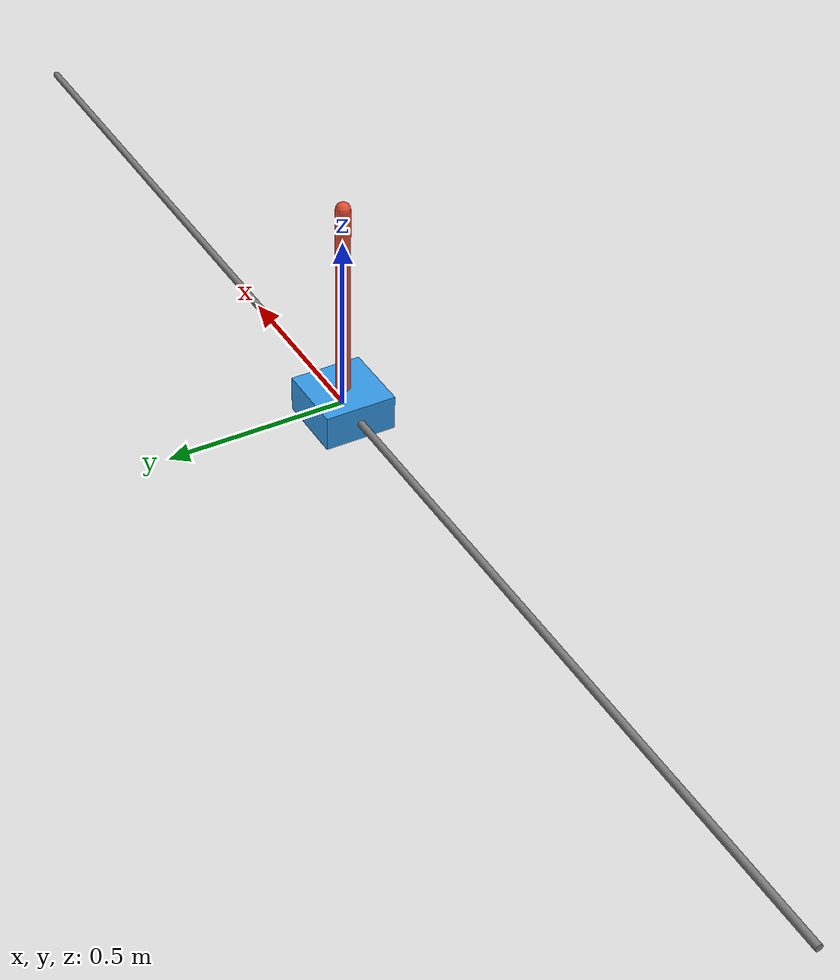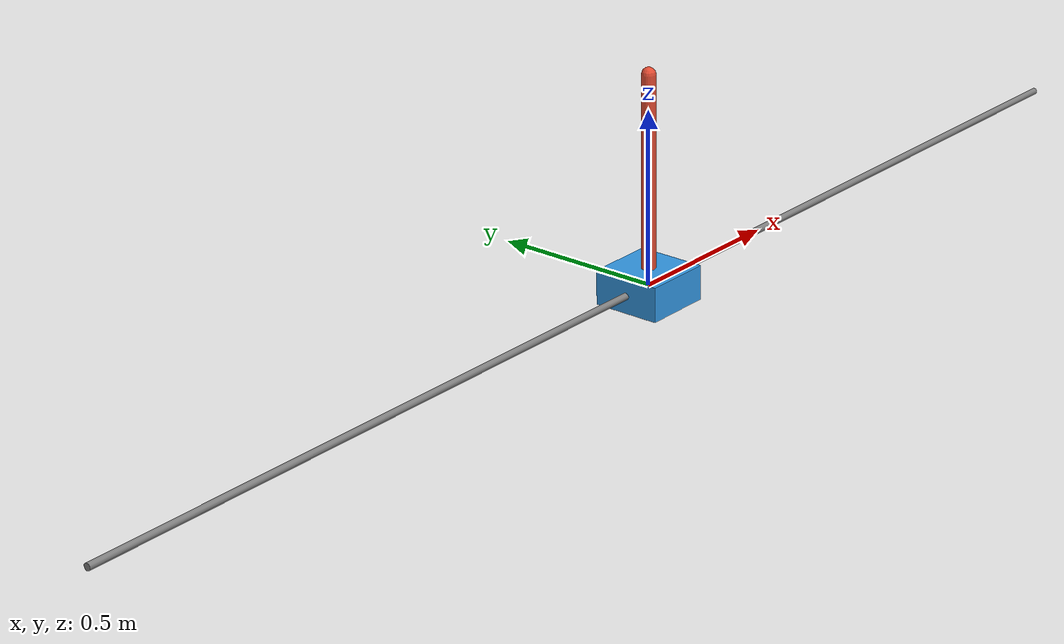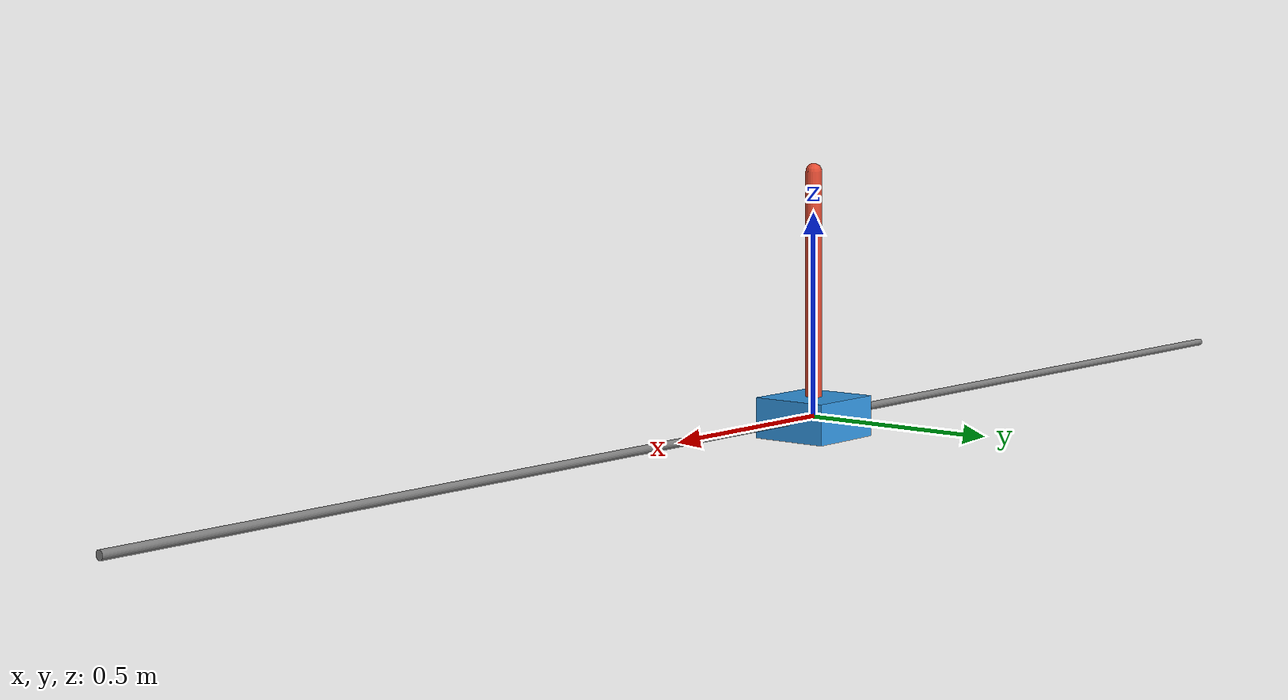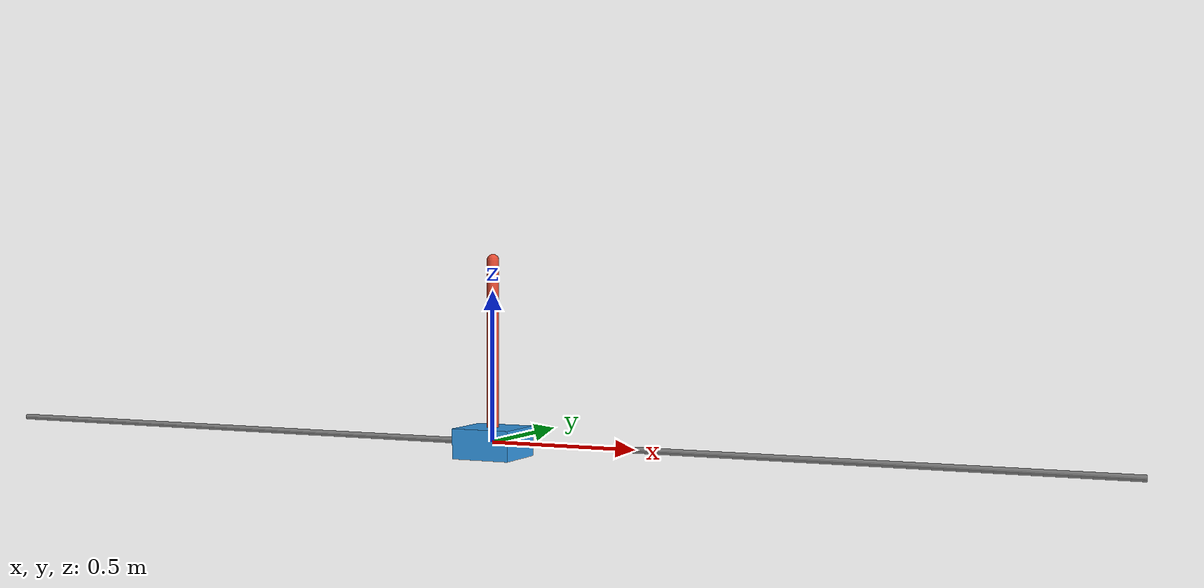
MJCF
<mujoco model="cartpole">
  <!-- 场景3: Cart-Pole (倒立摆)
       核心概念: 欠驱动系统、PID控制、LQR控制
       小车沿x轴滑动(滑动关节)，杆子通过铰链连在小车上(旋转关节) -->

  <compiler angle="radian"/>

  <option timestep="0.005" gravity="0 0 -9.81" integrator="RK4"/>

  <worldbody>
    <light pos="0 0 3" dir="0 0 -1" diffuse="1 1 1"/>
    <geom name="rail" type="cylinder" fromto="-2 0 0 2 0 0" size="0.01" rgba="0.5 0.5 0.5 1"/>

    <body name="cart" pos="0 0 0">
      <joint name="slider" type="slide" axis="1 0 0" range="-1.5 1.5" damping="0.1"/>
      <geom name="cart_geom" type="box" size="0.1 0.1 0.05" mass="1.0" rgba="0.2 0.6 0.9 1"/>

      <body name="pole" pos="0 0 0">
        <!-- 初始角度稍微偏离竖直，模拟需要控制器纠正的场景 -->
        <joint name="pole_hinge" type="hinge" axis="0 1 0" pos="0 0 0" damping="0.05"/>
        <geom type="capsule" fromto="0 0 0 0 0 0.6" size="0.02" mass="0.1" rgba="0.9 0.3 0.2 1"/>
      </body>
    </body>
  </worldbody>

  <actuator>
    <!-- 只能控制小车水平方向的力，杆子本身无驱动 -> 典型欠驱动系统 -->
    <motor name="cart_motor" joint="slider" gear="1" ctrlrange="-20 20"/>
  </actuator>
</mujoco>
